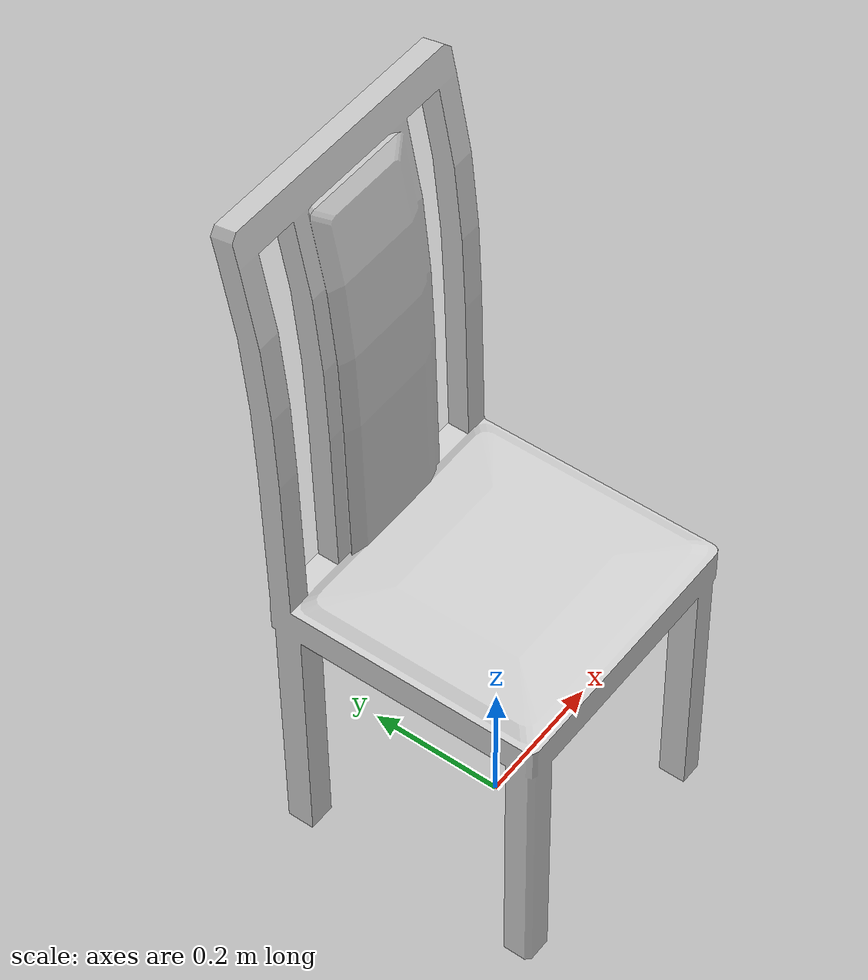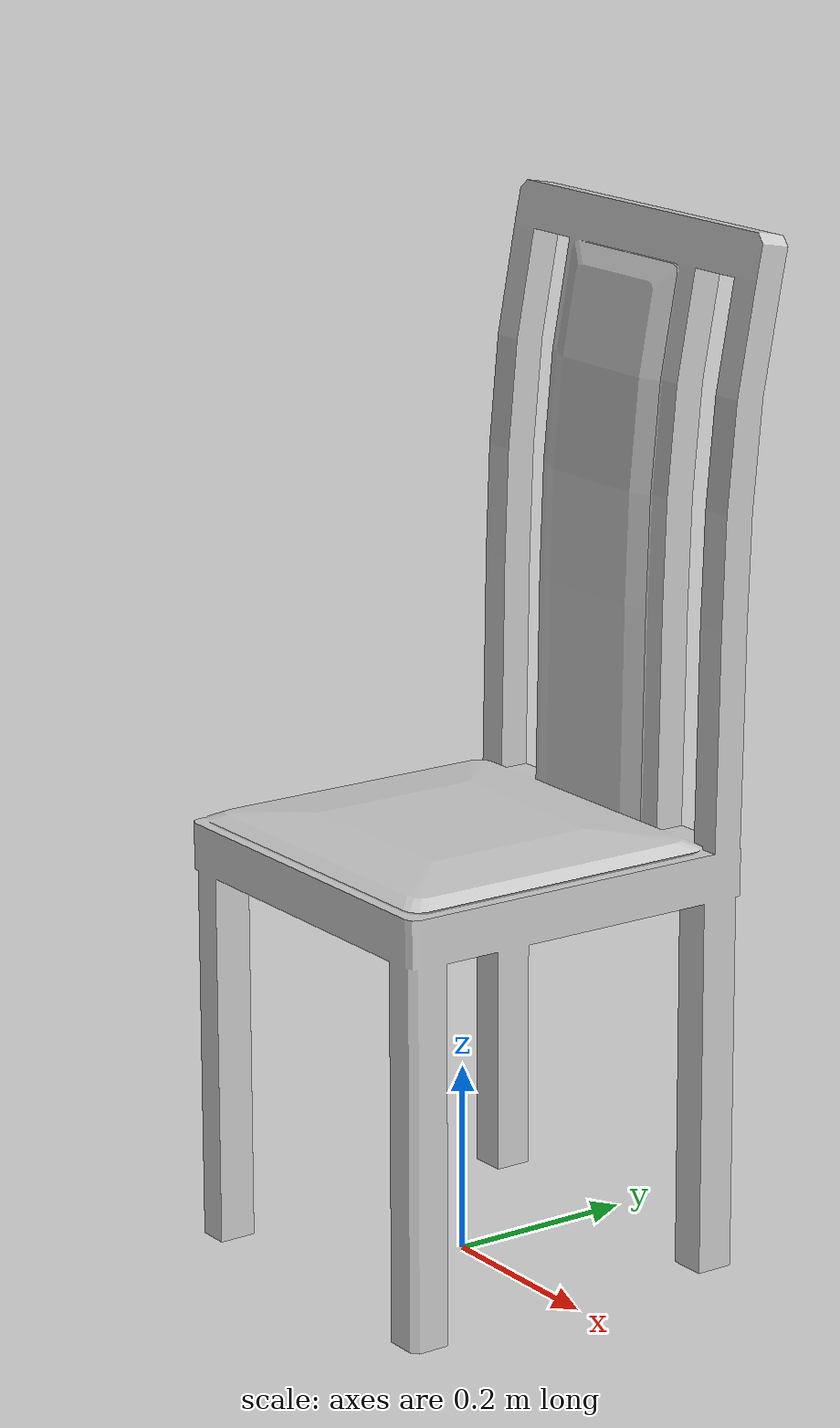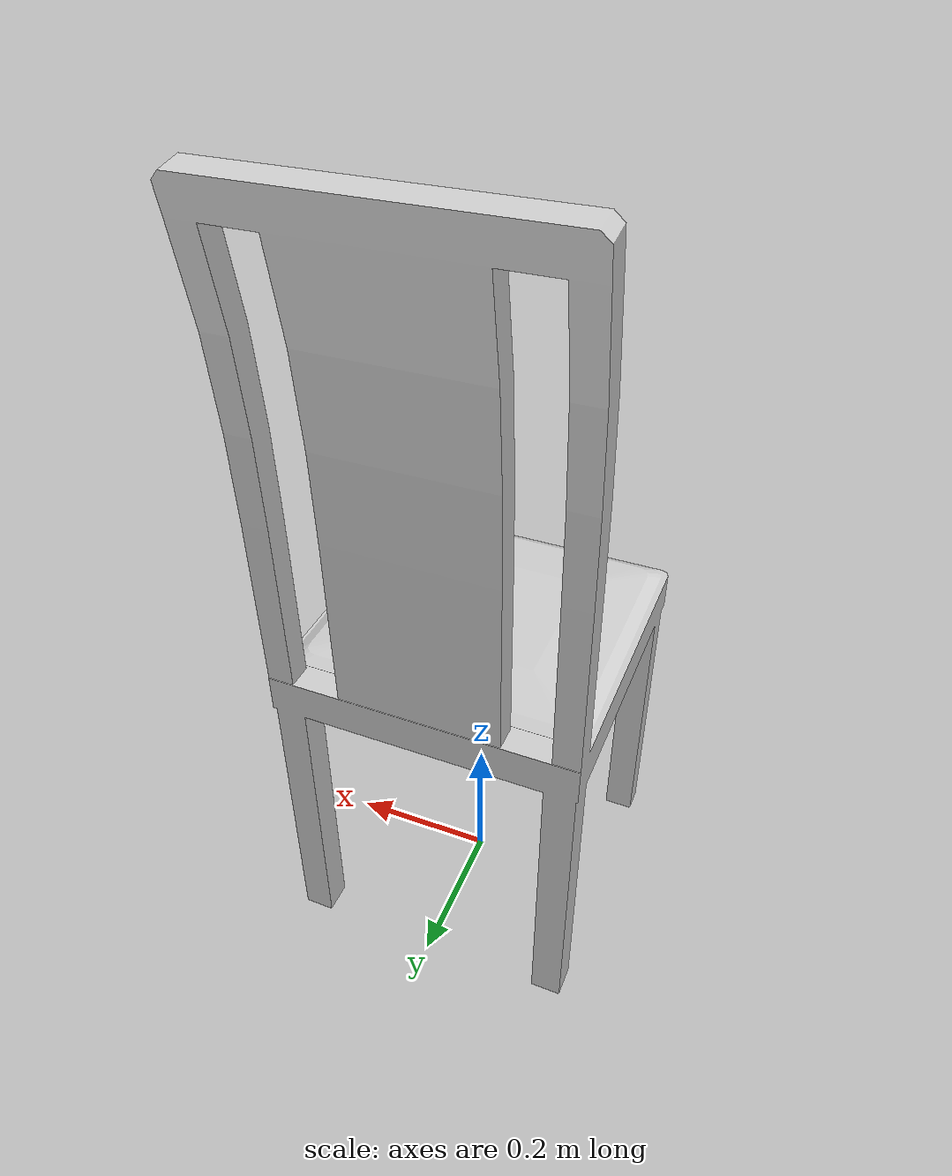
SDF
<?xml version='1.0'?>
<sdf version="1.4">
	<model name="dining_chair">
		<static>1</static>
		<link name="link">
			<visual name="mesh">
				<geometry>
					<mesh>
						<uri>model://meshes/dining_chair.dae</uri>
					</mesh>
				</geometry>
			</visual>
			<collision name="seat_collider">
				<pose>0 0 0.225 0 0 0</pose>
				<geometry>
					<box>
						<size>0.4 0.4 0.45</size>
					</box>
				</geometry>
			</collision>
			<collision name="backrest_collider">
				<pose>0 0.175 0.75 0 0 0</pose>
				<geometry>
					<box>
						<size>0.4 0.05 0.6</size>
					</box>
				</geometry>
			</collision>
		</link>
	</model>
</sdf>
